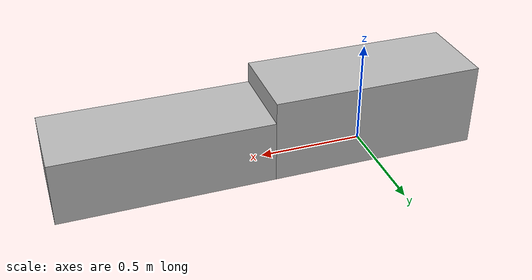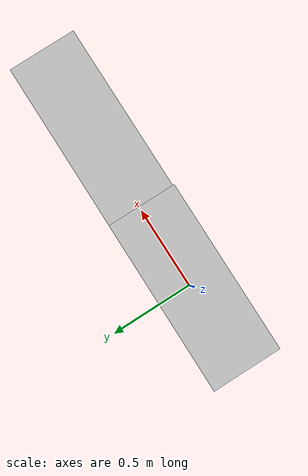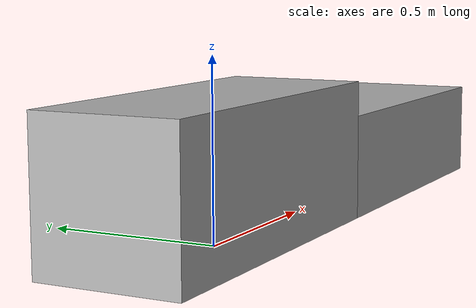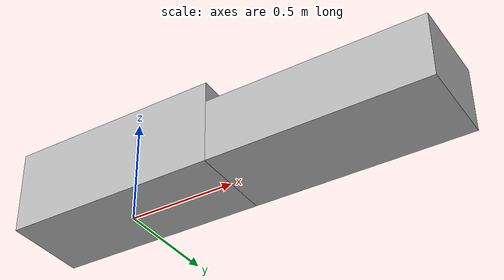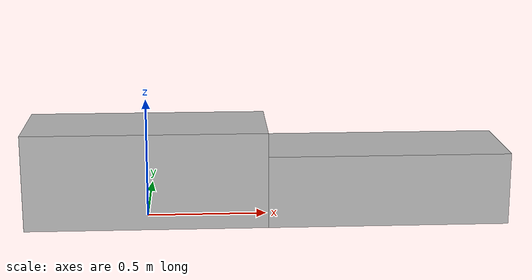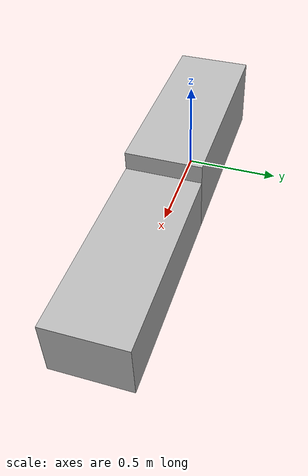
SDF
<?xml version="1.0"?>

<sdf version="1.6">
  <model name="platform">
    <static>true</static>

    <link name="platform link 1">

      <pose>0 0.0 0.2 0 0 0</pose>

      <collision name="platform collision 1">
        <geometry>
          <box>
            <size>1 0.4 0.4</size>
          </box>
        </geometry>
      </collision>

      <visual name="platform visual 1">
        <geometry>
          <box>
            <size>1 0.4 0.4</size>
          </box>
        </geometry>

      </visual>

    </link>

    <link name="platform link 2">

      <pose>1.0 0.0 0.15 0 0 0</pose>

      <collision name="platform collision 2">
        <geometry>
          <box>
            <size>1 0.4 0.3</size>
          </box>
        </geometry>
      </collision>

      <visual name="platfrom visual 2">
        <geometry>
          <box>
            <size>1 0.4 0.3</size>
          </box>
        </geometry>

      </visual>

    </link>

  </model>
</sdf>
